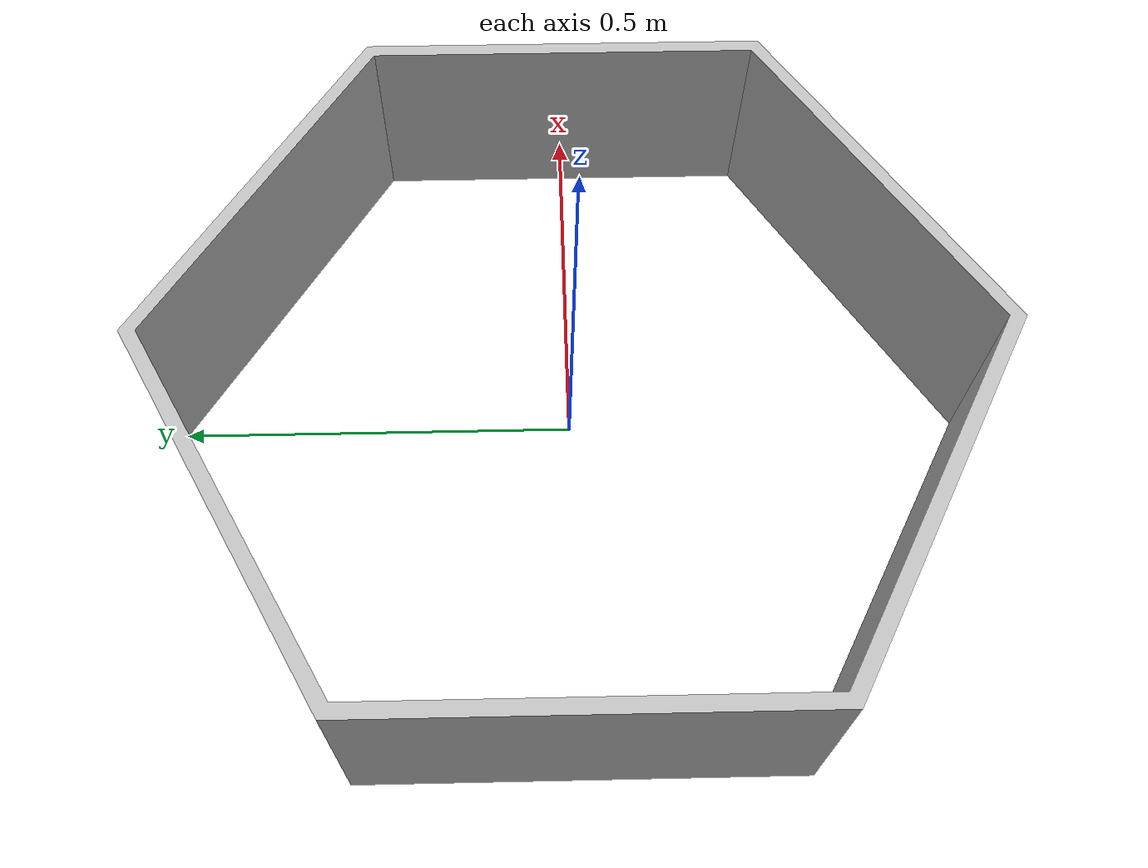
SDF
<?xml version="1.0" encoding="utf-8"?>

<sdf version='1.6'>
  <world name='default'>
    <!-- A ground plane -->

    <gravity>0 0 -19.6</gravity>
    <magnetic_field>6e-06 2.3e-05 -4.2e-05</magnetic_field>
    <physics name='default_physics' default='0' type='ode'>
      <max_step_size>0.001</max_step_size>
      <real_time_factor>1</real_time_factor>
      <real_time_update_rate>1000</real_time_update_rate>
      <ode>
        <solver>
          <type>quick</type>
          <iters>100</iters>
        </solver>
      </ode>

    </physics>

    <model name="gplane">
      <pose>0.000000 0.000000 0.000000 0.000000 -0.000000 0.000000</pose>
      <link name="plane">
        <pose>0.000000 0.000000 0.000000 0.000000 -0.000000 0.000000</pose>
        <collision name="plane">
          <pose>0.000000 0.000000 0.000000 0.000000 -0.000000 0.000000</pose>
          <geometry>
            <plane>
              <normal>0.000000 0.000000 1.000000</normal>
            </plane>
          </geometry>
          <surface>
            <friction>
              <ode>
                <mu>10000.000000</mu>
                <mu2>10000.000000</mu2>
                <fdir1>0.000000 0.000000 0.000000</fdir1>
                <slip1>0.000000</slip1>
                <slip2>0.000000</slip2>
              </ode>
            </friction>
            <bounce>
              <restitution_coefficient>0.000000</restitution_coefficient>
              <threshold>100000.000000</threshold>
            </bounce>
            <contact>
              <ode>
                <soft_cfm>0.000000</soft_cfm>
                <soft_erp>0.200000</soft_erp>
                <kp>1000000000.000000</kp>
                <kd>1.000000</kd>
                <max_vel>100.000000</max_vel>
                <min_depth>0.001000</min_depth>
              </ode>
            </contact>
          </surface>
          <laser_retro>0.000000</laser_retro>
        </collision>
        <gravity>1</gravity>
        <self_collide>0</self_collide>
        <kinematic>0</kinematic>
      </link>
      <static>1</static>
    </model>

    <scene>
      <ambient>0.4 0.4 0.4 1</ambient>
      <background>0.7 0.7 0.7 1</background>
      <shadows>1</shadows>
    </scene>

    <model name='hexagon'>
        <include>
            <uri>model://hexagon_01</uri>
        </include>
	  </model>

    <!-- Add some lights -->
    <light name='user_point_light_1' type='point'>
      <pose frame=''>0.082922 -0.781201 1 0 -0 0</pose>
      <diffuse>0.5 0.5 0.5 1</diffuse>
      <specular>0.1 0.1 0.1 1</specular>
      <attenuation>
        <range>20</range>
        <constant>0.5</constant>
        <linear>0.01</linear>
        <quadratic>0.001</quadratic>
      </attenuation>
      <cast_shadows>0</cast_shadows>
      <direction>0 0 -1</direction>
    </light>
    <light name='user_point_light_2' type='point'>
      <pose frame=''>-0.883119 1.11771 1 0 -0 0</pose>
      <diffuse>0.5 0.5 0.5 1</diffuse>
      <specular>0.1 0.1 0.1 1</specular>
      <attenuation>
        <range>20</range>
        <constant>0.5</constant>
        <linear>0.01</linear>
        <quadratic>0.001</quadratic>
      </attenuation>
      <cast_shadows>0</cast_shadows>
      <direction>0 0 -1</direction>
    </light>
    <light name='user_point_light_3' type='point'>
      <pose frame=''>-1.41441 -0.751026 1 0 -0 0</pose>
      <diffuse>0.5 0.5 0.5 1</diffuse>
      <specular>0.1 0.1 0.1 1</specular>
      <attenuation>
        <range>20</range>
        <constant>0.5</constant>
        <linear>0.01</linear>
        <quadratic>0.001</quadratic>
      </attenuation>
      <cast_shadows>0</cast_shadows>
      <direction>0 0 -1</direction>
    </light>
    <light name='user_point_light_4' type='point'>
      <pose frame=''>1.48895 -1.10072 1 0 -0 0</pose>
      <diffuse>0.5 0.5 0.5 1</diffuse>
      <specular>0.1 0.1 0.1 1</specular>
      <attenuation>
        <range>20</range>
        <constant>0.5</constant>
        <linear>0.01</linear>
        <quadratic>0.001</quadratic>
      </attenuation>
      <cast_shadows>0</cast_shadows>
      <direction>0 0 -1</direction>
    </light>
    <light name='user_point_light_5' type='point'>
      <pose frame=''>1.54837 2.29671 1 0 -0 0</pose>
      <diffuse>0.5 0.5 0.5 1</diffuse>
      <specular>0.1 0.1 0.1 1</specular>
      <attenuation>
        <range>20</range>
        <constant>0.5</constant>
        <linear>0.01</linear>
        <quadratic>0.001</quadratic>
      </attenuation>
      <cast_shadows>0</cast_shadows>
      <direction>0 0 -1</direction>
    </light>
    <gui fullscreen='0'>
      <camera name='user_camera'>
        <pose>0.8 0.0 12.0 0 1.5708 0</pose>
        <view_controller>orbit</view_controller>
      </camera>
    </gui>
  </world>
</sdf>

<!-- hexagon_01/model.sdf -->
<sdf version='1.6'>
  <model name='hexagon_01'>
    <static>1</static>
    <link name="room">
      <inertial>
        <mass>1</mass>
      </inertial>
      <visual name="visual">
            <geometry>
                <mesh>
                    <uri>file://models/hexagon_01/meshes/hexagon_01.dae</uri>
                </mesh>
            </geometry>
        </visual>
        <collision name="collision">
            <geometry>
                <mesh>
                    <uri>file://models/hexagon_01/meshes/hexagon_01.dae</uri>
                </mesh>
            </geometry>
        </collision>
    </link>
  </model>
</sdf>
